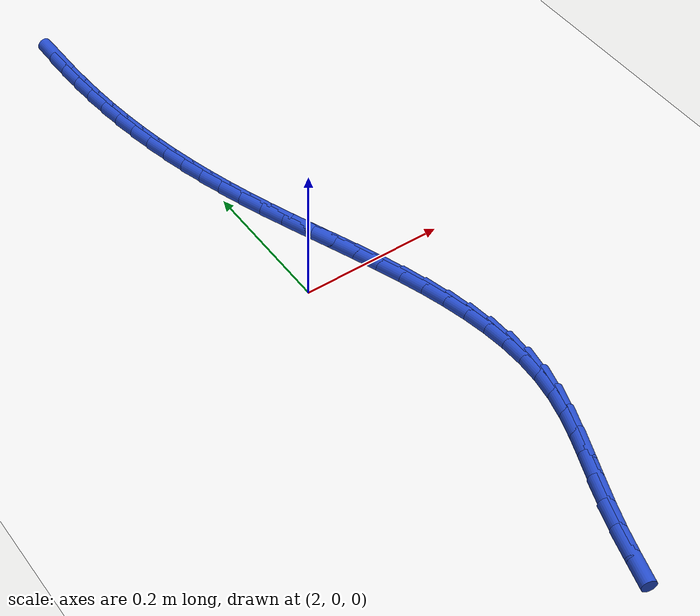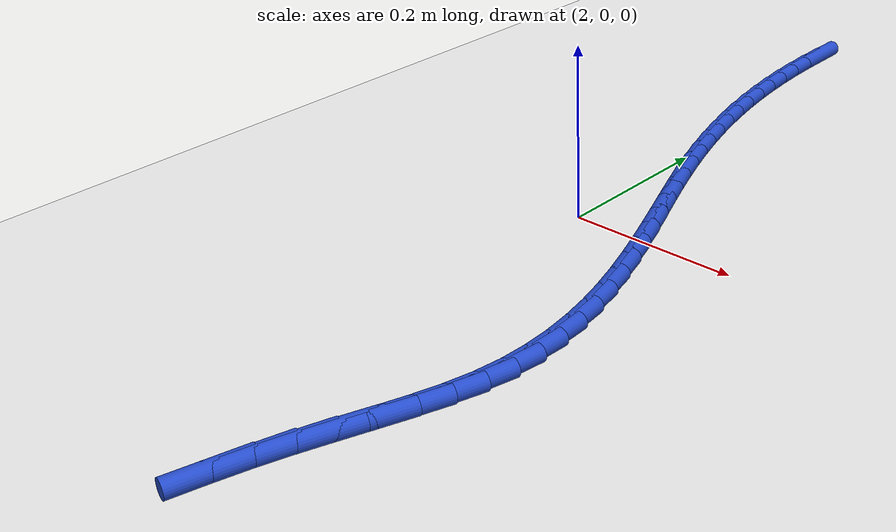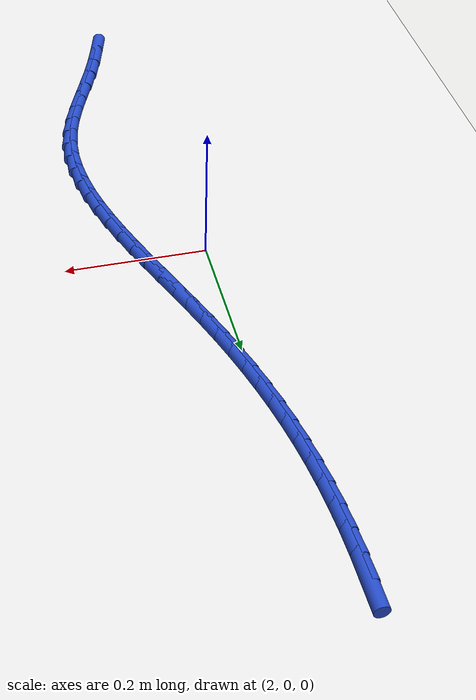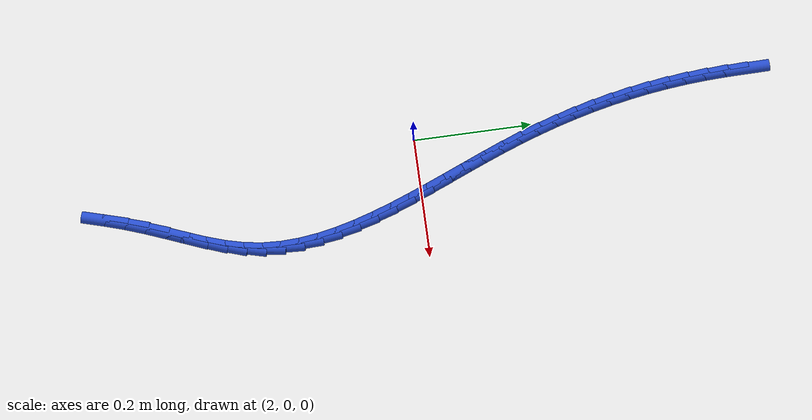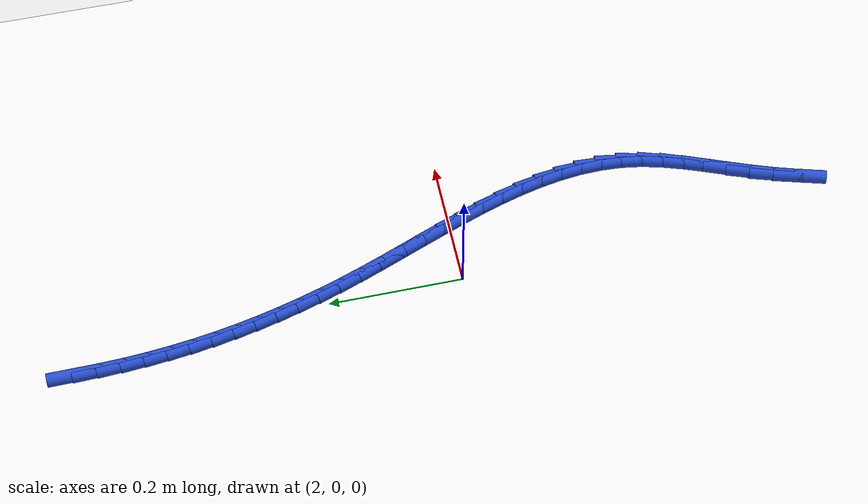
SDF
<sdf version="1.6">
 <world name="default">
  <model name="ground_plane">
   <static>1</static>
   <link name="link">
    <collision name="collision">
     <geometry><plane><normal>0 0 1</normal><size>100 100</size></plane></geometry>
     <surface><friction><ode><mu>100</mu><mu2>50</mu2></ode></friction></surface>
    </collision>
    <visual name="visual">
     <cast_shadows>0</cast_shadows>
     <geometry><plane><normal>0 0 1</normal><size>100 100</size></plane></geometry>
     <material>
      <script><uri>file://media/materials/scripts/gazebo.material</uri><name>Gazebo/WhiteGlow</name></script>
     </material>
    </visual>
   </link>
  </model>
  <model name="line">
   <link name="link_88">
    <pose>1.9557658041441317 0.5739174941211393 0.01 0 1.57 -1.561365277810809</pose>
    <collision name="collision">
     <geometry><cylinder><radius>0.01</radius><length>0.08</length></cylinder></geometry>
    </collision>
    <visual name="visual">
     <material>
      <script><name>Gazebo/Blue</name><uri>file://media/materials/scripts/gazebo.material</uri></script>
     </material>
     <geometry><cylinder><radius>0.01</radius><length>0.08</length></cylinder></geometry>
    </visual>
   </link>
   <link name="link_89">
    <pose>1.9560995624985185 0.5385292293006194 0.01 0 1.57 -1.5333334870522062</pose>
    <collision name="collision">
     <geometry><cylinder><radius>0.01</radius><length>0.08</length></cylinder></geometry>
    </collision>
    <visual name="visual">
     <material>
      <script><name>Gazebo/Blue</name><uri>file://media/materials/scripts/gazebo.material</uri></script>
     </material>
     <geometry><cylinder><radius>0.01</radius><length>0.08</length></cylinder></geometry>
    </visual>
   </link>
   <link name="link_90">
    <pose>1.9573999306363246 0.5038345892334474 0.01 0 1.57 -1.5045162207937364</pose>
    <collision name="collision">
     <geometry><cylinder><radius>0.01</radius><length>0.08</length></cylinder></geometry>
    </collision>
    <visual name="visual">
     <material>
      <script><name>Gazebo/Blue</name><uri>file://media/materials/scripts/gazebo.material</uri></script>
     </material>
     <geometry><cylinder><radius>0.01</radius><length>0.08</length></cylinder></geometry>
    </visual>
   </link>
   <link name="link_91">
    <pose>1.9596619808200568 0.4697559355550987 0.01 0 1.57 -1.4751210772694785</pose>
    <collision name="collision">
     <geometry><cylinder><radius>0.01</radius><length>0.08</length></cylinder></geometry>
    </collision>
    <visual name="visual">
     <material>
      <script><name>Gazebo/Blue</name><uri>file://media/materials/scripts/gazebo.material</uri></script>
     </material>
     <geometry><cylinder><radius>0.01</radius><length>0.08</length></cylinder></geometry>
    </visual>
   </link>
   <link name="link_92">
    <pose>1.962880785312221 0.43621562990104806 0.01 0 1.57 -1.4453794105737736</pose>
    <collision name="collision">
     <geometry><cylinder><radius>0.01</radius><length>0.08</length></cylinder></geometry>
    </collision>
    <visual name="visual">
     <material>
      <script><name>Gazebo/Blue</name><uri>file://media/materials/scripts/gazebo.material</uri></script>
     </material>
     <geometry><cylinder><radius>0.01</radius><length>0.08</length></cylinder></geometry>
    </visual>
   </link>
   <link name="link_93">
    <pose>1.9670514163753237 0.40313603390677144 0.01 0 1.57 -1.4155399157731614</pose>
    <collision name="collision">
     <geometry><cylinder><radius>0.01</radius><length>0.08</length></cylinder></geometry>
    </collision>
    <visual name="visual">
     <material>
      <script><name>Gazebo/Blue</name><uri>file://media/materials/scripts/gazebo.material</uri></script>
     </material>
     <geometry><cylinder><radius>0.01</radius><length>0.08</length></cylinder></geometry>
    </visual>
   </link>
   <link name="link_94">
    <pose>1.97216894627187 0.3704395092077433 0.01 0 1.57 -1.385860838722478</pose>
    <collision name="collision">
     <geometry><cylinder><radius>0.01</radius><length>0.08</length></cylinder></geometry>
    </collision>
    <visual name="visual">
     <material>
      <script><name>Gazebo/Blue</name><uri>file://media/materials/scripts/gazebo.material</uri></script>
     </material>
     <geometry><cylinder><radius>0.01</radius><length>0.08</length></cylinder></geometry>
    </visual>
   </link>
   <link name="link_95">
    <pose>1.9782284472643663 0.3380484174394385 0.01 0 1.57 -1.3566013604336506</pose>
    <collision name="collision">
     <geometry><cylinder><radius>0.01</radius><length>0.08</length></cylinder></geometry>
    </collision>
    <visual name="visual">
     <material>
      <script><name>Gazebo/Blue</name><uri>file://media/materials/scripts/gazebo.material</uri></script>
     </material>
     <geometry><cylinder><radius>0.01</radius><length>0.08</length></cylinder></geometry>
    </visual>
   </link>
   <link name="link_96">
    <pose>1.985224991615319 0.305885120237333 0.01 0 1.57 -1.328012824327587</pose>
    <collision name="collision">
     <geometry><cylinder><radius>0.01</radius><length>0.08</length></cylinder></geometry>
    </collision>
    <visual name="visual">
     <material>
      <script><name>Gazebo/Blue</name><uri>file://media/materials/scripts/gazebo.material</uri></script>
     </material>
     <geometry><cylinder><radius>0.01</radius><length>0.08</length></cylinder></geometry>
    </visual>
   </link>
   <link name="link_97">
    <pose>1.9931536515872343 0.27387197923690126 0.01 0 1.57 -1.3003304993357787</pose>
    <collision name="collision">
     <geometry><cylinder><radius>0.01</radius><length>0.08</length></cylinder></geometry>
    </collision>
    <visual name="visual">
     <material>
      <script><name>Gazebo/Blue</name><uri>file://media/materials/scripts/gazebo.material</uri></script>
     </material>
     <geometry><cylinder><radius>0.01</radius><length>0.08</length></cylinder></geometry>
    </visual>
   </link>
   <link name="link_98">
    <pose>2.0020094994426176 0.24193135607361818 0.01 0 1.57 -1.2737664969563371</pose>
    <collision name="collision">
     <geometry><cylinder><radius>0.01</radius><length>0.08</length></cylinder></geometry>
    </collision>
    <visual name="visual">
     <material>
      <script><name>Gazebo/Blue</name><uri>file://media/materials/scripts/gazebo.material</uri></script>
     </material>
     <geometry><cylinder><radius>0.01</radius><length>0.08</length></cylinder></geometry>
    </visual>
   </link>
   <link name="link_99">
    <pose>2.0117876074439756 0.20998561238295965 0.01 0 1.57 -1.2485043027606284</pose>
    <collision name="collision">
     <geometry><cylinder><radius>0.01</radius><length>0.08</length></cylinder></geometry>
    </collision>
    <visual name="visual">
     <material>
      <script><name>Gazebo/Blue</name><uri>file://media/materials/scripts/gazebo.material</uri></script>
     </material>
     <geometry><cylinder><radius>0.01</radius><length>0.08</length></cylinder></geometry>
    </visual>
   </link>
   <link name="link_100">
    <pose>2.0224830478538136 0.1779571098004003 0.01 0 1.57 -1.2246988902339082</pose>
    <collision name="collision">
     <geometry><cylinder><radius>0.01</radius><length>0.08</length></cylinder></geometry>
    </collision>
    <visual name="visual">
     <material>
      <script><name>Gazebo/Blue</name><uri>file://media/materials/scripts/gazebo.material</uri></script>
     </material>
     <geometry><cylinder><radius>0.01</radius><length>0.08</length></cylinder></geometry>
    </visual>
   </link>
   <link name="link_101">
    <pose>2.0340907359773226 0.14576827058842837 0.01 0 1.57 -1.204222264813193</pose>
    <collision name="collision">
     <geometry><cylinder><radius>0.01</radius><length>0.08</length></cylinder></geometry>
    </collision>
    <visual name="visual">
     <material>
      <script><name>Gazebo/Blue</name><uri>file://media/materials/scripts/gazebo.material</uri></script>
     </material>
     <geometry><cylinder><radius>0.01</radius><length>0.08</length></cylinder></geometry>
    </visual>
   </link>
   <link name="link_102">
    <pose>2.0465288662500067 0.1133711515453364 0.01 0 1.57 -1.191448512287862</pose>
    <collision name="collision">
     <geometry><cylinder><radius>0.01</radius><length>0.08</length></cylinder></geometry>
    </collision>
    <visual name="visual">
     <material>
      <script><name>Gazebo/Blue</name><uri>file://media/materials/scripts/gazebo.material</uri></script>
     </material>
     <geometry><cylinder><radius>0.01</radius><length>0.08</length></cylinder></geometry>
    </visual>
   </link>
   <link name="link_103">
    <pose>2.0595155255640383 0.08079510387681492 0.01 0 1.57 -1.1867167551376274</pose>
    <collision name="collision">
     <geometry><cylinder><radius>0.01</radius><length>0.08</length></cylinder></geometry>
    </collision>
    <visual name="visual">
     <material>
      <script><name>Gazebo/Blue</name><uri>file://media/materials/scripts/gazebo.material</uri></script>
     </material>
     <geometry><cylinder><radius>0.01</radius><length>0.08</length></cylinder></geometry>
    </visual>
   </link>
   <link name="link_104">
    <pose>2.0727365859225877 0.04808192225127021 0.01 0 1.57 -1.1898190442919476</pose>
    <collision name="collision">
     <geometry><cylinder><radius>0.01</radius><length>0.08</length></cylinder></geometry>
    </collision>
    <visual name="visual">
     <material>
      <script><name>Gazebo/Blue</name><uri>file://media/materials/scripts/gazebo.material</uri></script>
     </material>
     <geometry><cylinder><radius>0.01</radius><length>0.08</length></cylinder></geometry>
    </visual>
   </link>
   <link name="link_105">
    <pose>2.085877919328829 0.01527340133710866 0.01 0 1.57 -1.200756814366839</pose>
    <collision name="collision">
     <geometry><cylinder><radius>0.01</radius><length>0.08</length></cylinder></geometry>
    </collision>
    <visual name="visual">
     <material>
      <script><name>Gazebo/Blue</name><uri>file://media/materials/scripts/gazebo.material</uri></script>
     </material>
     <geometry><cylinder><radius>0.01</radius><length>0.08</length></cylinder></geometry>
    </visual>
   </link>
   <link name="link_106">
    <pose>2.0986253977859346 -0.017588664197264056 0.01 0 1.57 -1.219733337115409</pose>
    <collision name="collision">
     <geometry><cylinder><radius>0.01</radius><length>0.08</length></cylinder></geometry>
    </collision>
    <visual name="visual">
     <material>
      <script><name>Gazebo/Blue</name><uri>file://media/materials/scripts/gazebo.material</uri></script>
     </material>
     <geometry><cylinder><radius>0.01</radius><length>0.08</length></cylinder></geometry>
    </visual>
   </link>
   <link name="link_107">
    <pose>2.110664893297076 -0.050462479683440184 0.01 0 1.57 -1.2471435801305075</pose>
    <collision name="collision">
     <geometry><cylinder><radius>0.01</radius><length>0.08</length></cylinder></geometry>
    </collision>
    <visual name="visual">
     <material>
      <script><name>Gazebo/Blue</name><uri>file://media/materials/scripts/gazebo.material</uri></script>
     </material>
     <geometry><cylinder><radius>0.01</radius><length>0.08</length></cylinder></geometry>
    </visual>
   </link>
   <link name="link_108">
    <pose>2.1216822778654256 -0.08330625045301401 0.01 0 1.57 -1.2835561411072995</pose>
    <collision name="collision">
     <geometry><cylinder><radius>0.01</radius><length>0.08</length></cylinder></geometry>
    </collision>
    <visual name="visual">
     <material>
      <script><name>Gazebo/Blue</name><uri>file://media/materials/scripts/gazebo.material</uri></script>
     </material>
     <geometry><cylinder><radius>0.01</radius><length>0.08</length></cylinder></geometry>
    </visual>
   </link>
   <link name="link_109">
    <pose>2.131363423494156 -0.11607818183757922 0.01 0 1.57 -1.3296772092463849</pose>
    <collision name="collision">
     <geometry><cylinder><radius>0.01</radius><length>0.08</length></cylinder></geometry>
    </collision>
    <visual name="visual">
     <material>
      <script><name>Gazebo/Blue</name><uri>file://media/materials/scripts/gazebo.material</uri></script>
     </material>
     <geometry><cylinder><radius>0.01</radius><length>0.08</length></cylinder></geometry>
    </visual>
   </link>
   <link name="link_110">
    <pose>2.13939420218644 -0.14873647916872945 0.01 0 1.57 -1.3862808337458743</pose>
    <collision name="collision">
     <geometry><cylinder><radius>0.01</radius><length>0.08</length></cylinder></geometry>
    </collision>
    <visual name="visual">
     <material>
      <script><name>Gazebo/Blue</name><uri>file://media/materials/scripts/gazebo.material</uri></script>
     </material>
     <geometry><cylinder><radius>0.01</radius><length>0.08</length></cylinder></geometry>
    </visual>
   </link>
   <link name="link_111">
    <pose>2.145460485945449 -0.18123934777805834 0.01 0 1.57 -1.454084614795943</pose>
    <collision name="collision">
     <geometry><cylinder><radius>0.01</radius><length>0.08</length></cylinder></geometry>
    </collision>
    <visual name="visual">
     <material>
      <script><name>Gazebo/Blue</name><uri>file://media/materials/scripts/gazebo.material</uri></script>
     </material>
     <geometry><cylinder><radius>0.01</radius><length>0.08</length></cylinder></geometry>
    </visual>
   </link>
   <link name="link_112">
    <pose>2.1492481467743567 -0.21354499299716023 0.01 0 1.57 -1.5335502114042325</pose>
    <collision name="collision">
     <geometry><cylinder><radius>0.01</radius><length>0.08</length></cylinder></geometry>
    </collision>
    <visual name="visual">
     <material>
      <script><name>Gazebo/Blue</name><uri>file://media/materials/scripts/gazebo.material</uri></script>
     </material>
     <geometry><cylinder><radius>0.01</radius><length>0.08</length></cylinder></geometry>
    </visual>
   </link>
   <link name="link_113">
    <pose>2.150443056676334 -0.24561162015762728 0.01 0 1.57 1.5169887859256022</pose>
    <collision name="collision">
     <geometry><cylinder><radius>0.01</radius><length>0.08</length></cylinder></geometry>
    </collision>
    <visual name="visual">
     <material>
      <script><name>Gazebo/Blue</name><uri>file://media/materials/scripts/gazebo.material</uri></script>
     </material>
     <geometry><cylinder><radius>0.01</radius><length>0.08</length></cylinder></geometry>
    </visual>
   </link>
   <link name="link_114">
    <pose>2.1487310876545545 -0.2773974345910539 0.01 0 1.57 1.415580327125794</pose>
    <collision name="collision">
     <geometry><cylinder><radius>0.01</radius><length>0.08</length></cylinder></geometry>
    </collision>
    <visual name="visual">
     <material>
      <script><name>Gazebo/Blue</name><uri>file://media/materials/scripts/gazebo.material</uri></script>
     </material>
     <geometry><cylinder><radius>0.01</radius><length>0.08</length></cylinder></geometry>
    </visual>
   </link>
   <link name="link_115">
    <pose>2.1438075494712425 -0.308862845615186 0.01 0 1.57 1.3197248190101092</pose>
    <collision name="collision">
     <geometry><cylinder><radius>0.01</radius><length>0.08</length></cylinder></geometry>
    </collision>
    <visual name="visual">
     <material>
      <script><name>Gazebo/Blue</name><uri>file://media/materials/scripts/gazebo.material</uri></script>
     </material>
     <geometry><cylinder><radius>0.01</radius><length>0.08</length></cylinder></geometry>
    </visual>
   </link>
   <link name="link_116">
    <pose>2.1358034248707756 -0.34007000462597475 0.01 0 1.57 1.250202705621795</pose>
    <collision name="collision">
     <geometry><cylinder><radius>0.01</radius><length>0.08</length></cylinder></geometry>
    </collision>
    <visual name="visual">
     <material>
      <script><name>Gazebo/Blue</name><uri>file://media/materials/scripts/gazebo.material</uri></script>
     </material>
     <geometry><cylinder><radius>0.01</radius><length>0.08</length></cylinder></geometry>
    </visual>
   </link>
   <link name="link_117">
    <pose>2.1254590066093755 -0.3712233543007118 0.01 0 1.57 1.207663755966458</pose>
    <collision name="collision">
     <geometry><cylinder><radius>0.01</radius><length>0.08</length></cylinder></geometry>
    </collision>
    <visual name="visual">
     <material>
      <script><name>Gazebo/Blue</name><uri>file://media/materials/scripts/gazebo.material</uri></script>
     </material>
     <geometry><cylinder><radius>0.01</radius><length>0.08</length></cylinder></geometry>
    </visual>
   </link>
   <link name="link_118">
    <pose>2.113559982142518 -0.40253793827481776 0.01 0 1.57 1.190518513195598</pose>
    <collision name="collision">
     <geometry><cylinder><radius>0.01</radius><length>0.08</length></cylinder></geometry>
    </collision>
    <visual name="visual">
     <material>
      <script><name>Gazebo/Blue</name><uri>file://media/materials/scripts/gazebo.material</uri></script>
     </material>
     <geometry><cylinder><radius>0.01</radius><length>0.08</length></cylinder></geometry>
    </visual>
   </link>
   <link name="link_119">
    <pose>2.1008920389256778 -0.4342288001837139 0.01 0 1.57 1.1972978768963247</pose>
    <collision name="collision">
     <geometry><cylinder><radius>0.01</radius><length>0.08</length></cylinder></geometry>
    </collision>
    <visual name="visual">
     <material>
      <script><name>Gazebo/Blue</name><uri>file://media/materials/scripts/gazebo.material</uri></script>
     </material>
     <geometry><cylinder><radius>0.01</radius><length>0.08</length></cylinder></geometry>
    </visual>
   </link>
   <link name="link_120">
    <pose>2.088240864414333 -0.46651098366281973 0.01 0 1.57 1.2268689305005518</pose>
    <collision name="collision">
     <geometry><cylinder><radius>0.01</radius><length>0.08</length></cylinder></geometry>
    </collision>
    <visual name="visual">
     <material>
      <script><name>Gazebo/Blue</name><uri>file://media/materials/scripts/gazebo.material</uri></script>
     </material>
     <geometry><cylinder><radius>0.01</radius><length>0.08</length></cylinder></geometry>
    </visual>
   </link>
   <link name="link_121">
    <pose>2.0763901775436104 -0.49959849959278524 0.01 0 1.57 1.2665996241157482</pose>
    <collision name="collision">
     <geometry><cylinder><radius>0.01</radius><length>0.08</length></cylinder></geometry>
    </collision>
    <visual name="visual">
     <material>
      <script><name>Gazebo/Blue</name><uri>file://media/materials/scripts/gazebo.material</uri></script>
     </material>
     <geometry><cylinder><radius>0.01</radius><length>0.08</length></cylinder></geometry>
    </visual>
   </link>
   <link name="link_122">
    <pose>2.065745021419627 -0.5335066922419005 0.01 0 1.57 1.290928732849277</pose>
    <collision name="collision">
     <geometry><cylinder><radius>0.01</radius><length>0.08</length></cylinder></geometry>
    </collision>
    <visual name="visual">
     <material>
      <script><name>Gazebo/Blue</name><uri>file://media/materials/scripts/gazebo.material</uri></script>
     </material>
     <geometry><cylinder><radius>0.01</radius><length>0.08</length></cylinder></geometry>
    </visual>
   </link>
  </model>
 </world>
</sdf>
